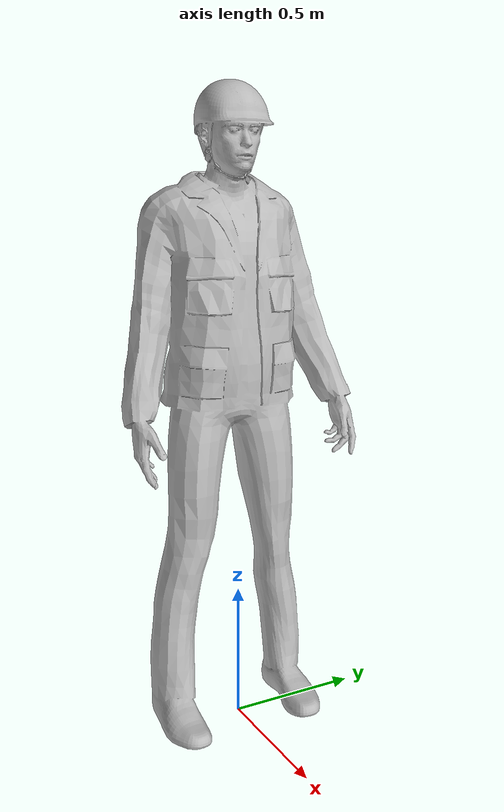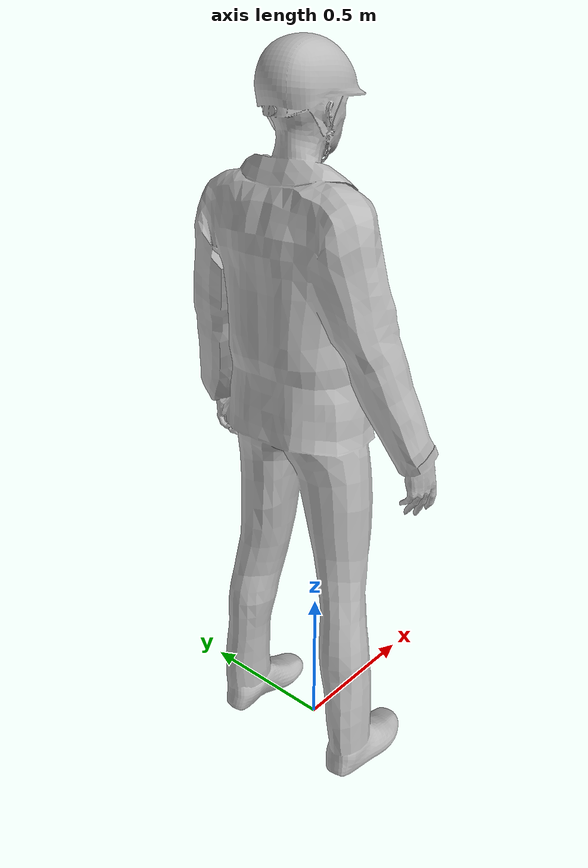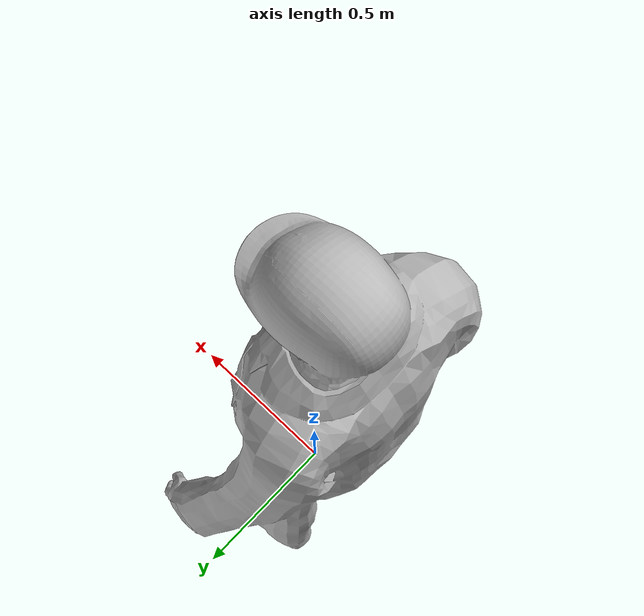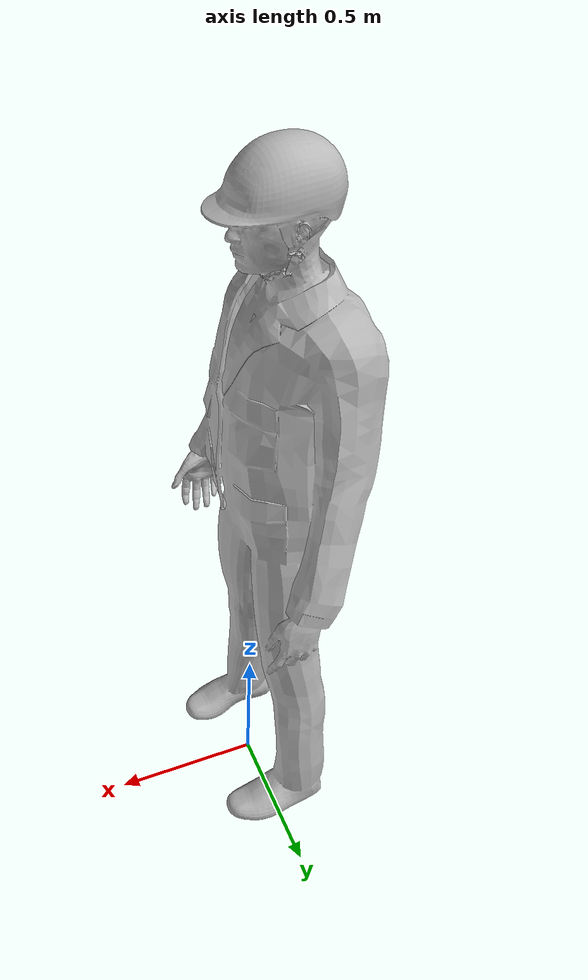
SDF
<?xml version='1.0'?>
<sdf version="1.8">
  <model name="jeff_electrician">
    <static>true</static>
    <link name="link">
      <inertial>
        <mass>80.0</mass>
        <inertia>
          <ixx>27.7</ixx>
          <ixy>0.0</ixy>
          <ixz>0.0</ixz>
          <iyy>27.7</iyy>
          <iyz>0.0</iyz>
          <izz>1.6</izz>
        </inertia>
      </inertial>
      <collision name="collision">
        <pose>0 0 0.9 0 0 0</pose>
        <geometry>
          <box>
            <size>0.6 0.4 1.8</size>
          </box>
        </geometry>
      </collision>
      <visual name="visual">
        <geometry>
          <mesh>
            <uri>model://jeff_electrician/jeff_electrician.dae</uri>
          </mesh>
        </geometry>
      </visual>
    </link>
  </model>
</sdf>
